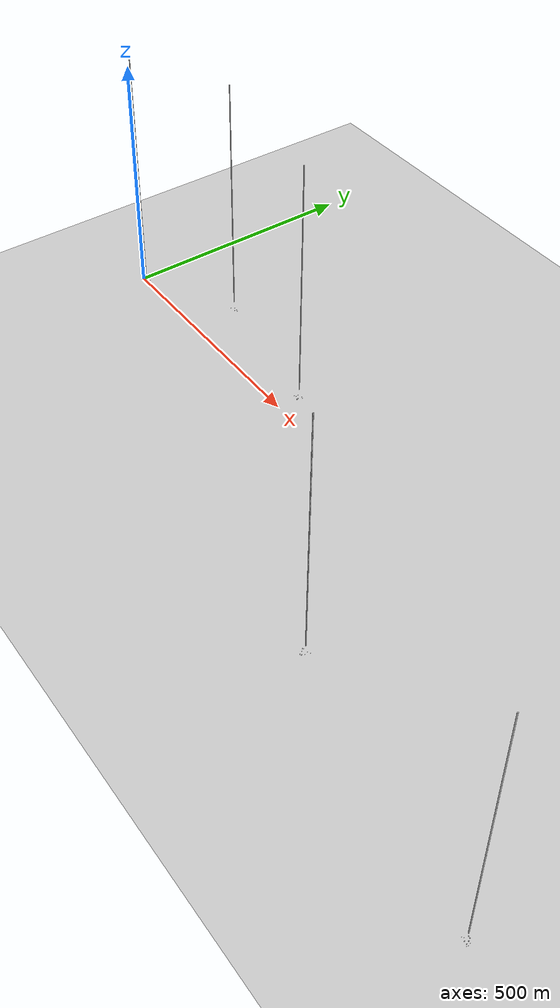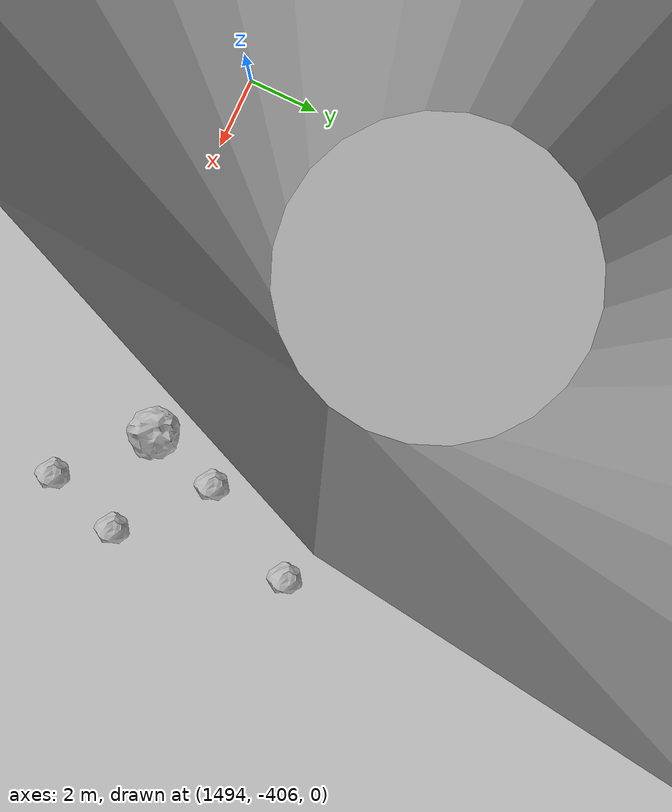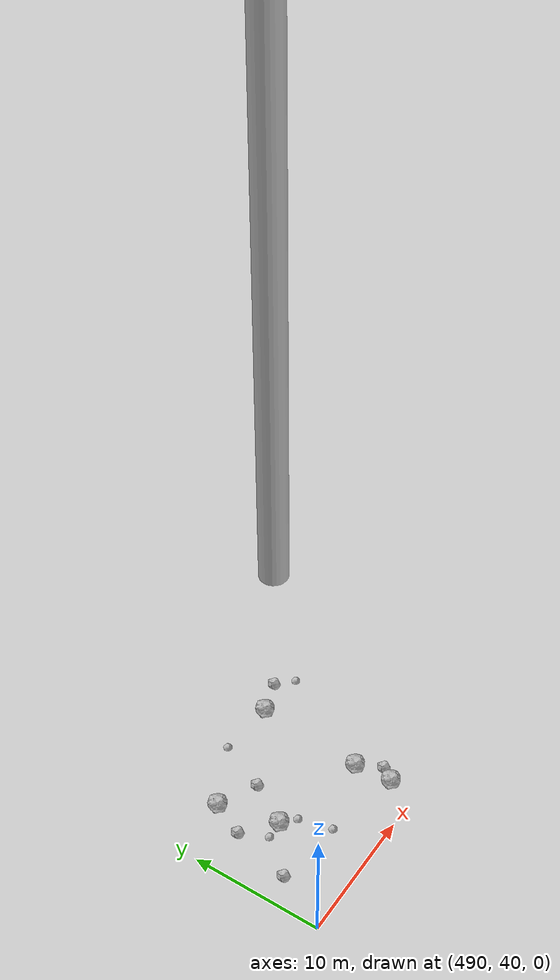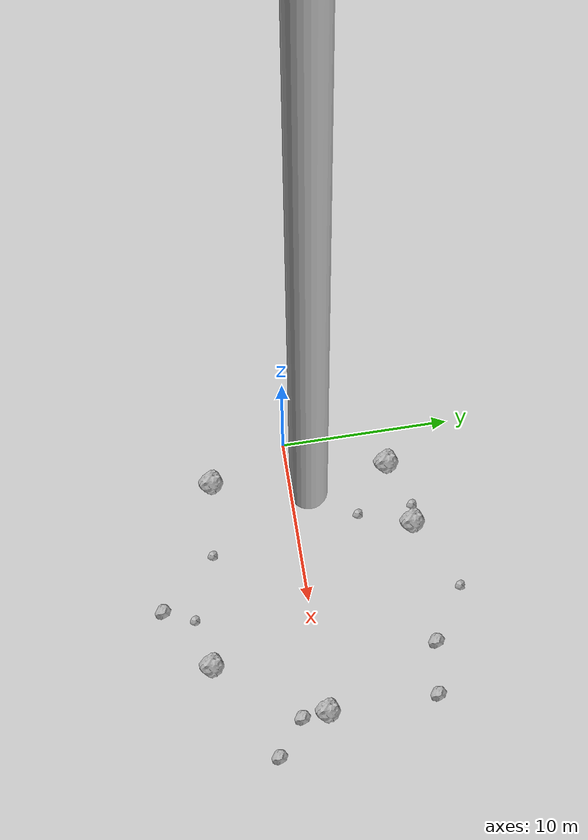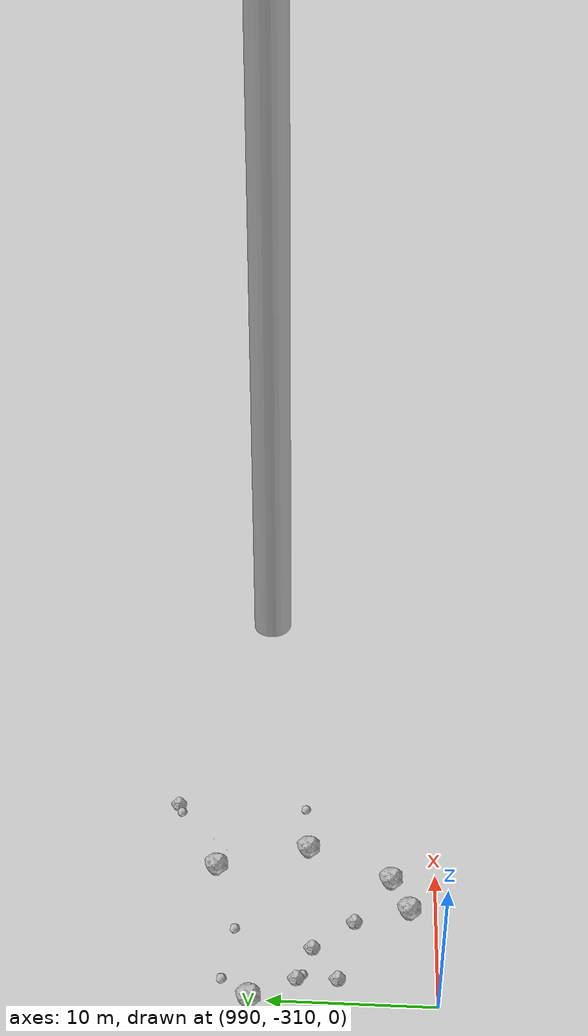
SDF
<?xml version="1.0" ?>
<sdf version="1.6">
  <world name="default">

    <include>
      <uri>model://custom_ground</uri>
    </include>

    <include>
      <uri>model://sun</uri>
    </include>

    <spherical_coordinates>
      <surface_model>EARTH_WGS84</surface_model>
      <latitude_deg>38.161479</latitude_deg>
      <longitude_deg>-122.454630</longitude_deg>
      <elevation>488.0</elevation>
      <heading_deg>90</heading_deg>
    </spherical_coordinates>

    <model name="rock1_0_0">
      <include>
        <uri>model://rock1</uri>
        <pose>6.1824321757715435 6.888398201601802 0.5 0 0 0</pose>
      </include>
    </model>
    <model name="rock1_0_1">
      <include>
        <uri>model://rock1</uri>
        <pose>13.232699019479647 -6.296399004590341 0.5 0 0 0</pose>
      </include>
    </model>
    <model name="rock1_0_2">
      <include>
        <uri>model://rock1</uri>
        <pose>2.209179304546629 5.941344303936749 0.5 0 0 0</pose>
      </include>
    </model>
    <model name="rock1_0_3">
      <include>
        <uri>model://rock1</uri>
        <pose>17.00802507245848 0.051004042863322496 0.5 0 0 0</pose>
      </include>
    </model>
    <model name="rock1_0_4">
      <include>
        <uri>model://rock1</uri>
        <pose>1.9121423185794617 -4.714589942565461 0.5 0 0 0</pose>
      </include>
    </model>
    <model name="rock2_0_0">
      <include>
        <uri>model://rock2</uri>
        <pose>19.23663999640715 -3.1477356330472723 0.3 0 0 0</pose>
      </include>
    </model>
    <model name="rock2_0_1">
      <include>
        <uri>model://rock2</uri>
        <pose>9.408966148807407 -8.67067469249615 0.3 0 0 0</pose>
      </include>
    </model>
    <model name="rock2_0_2">
      <include>
        <uri>model://rock2</uri>
        <pose>13.68260434279771 7.089190408409085 0.3 0 0 0</pose>
      </include>
    </model>
    <model name="rock2_0_3">
      <include>
        <uri>model://rock2</uri>
        <pose>16.89307140179175 6.667191962954973 0.3 0 0 0</pose>
      </include>
    </model>
    <model name="rock2_0_4">
      <include>
        <uri>model://rock2</uri>
        <pose>17.098887576201925 -1.469563478201156 0.3 0 0 0</pose>
      </include>
    </model>
    <model name="rock3_0_0">
      <include>
        <uri>model://rock3</uri>
        <pose>10.212415187337108 -6.883486304628512 0.2 0 0 0</pose>
      </include>
    </model>
    <model name="rock3_0_1">
      <include>
        <uri>model://rock3</uri>
        <pose>6.362223009131034 -5.261863627740551 0.2 0 0 0</pose>
      </include>
    </model>
    <model name="rock3_0_2">
      <include>
        <uri>model://rock3</uri>
        <pose>4.976266327527201 7.042895151003464 0.2 0 0 0</pose>
      </include>
    </model>
    <model name="rock3_0_3">
      <include>
        <uri>model://rock3</uri>
        <pose>10.459747045499055 9.05318262239578 0.2 0 0 0</pose>
      </include>
    </model>
    <model name="rock3_0_4">
      <include>
        <uri>model://rock3</uri>
        <pose>5.0933209572403415 3.7415994457849386 0.2 0 0 0</pose>
      </include>
    </model>
    <model name="rock1_1_0">
      <include>
        <uri>model://rock1</uri>
        <pose>204.1110656782881 103.00419307163591 0.5 0 0 0</pose>
      </include>
    </model>
    <model name="rock1_1_1">
      <include>
        <uri>model://rock1</uri>
        <pose>197.48901009179494 90.70064119404076 0.5 0 0 0</pose>
      </include>
    </model>
    <model name="rock1_1_2">
      <include>
        <uri>model://rock1</uri>
        <pose>197.86329263503157 102.70473404224788 0.5 0 0 0</pose>
      </include>
    </model>
    <model name="rock1_1_3">
      <include>
        <uri>model://rock1</uri>
        <pose>203.81690691152488 98.75804081378415 0.5 0 0 0</pose>
      </include>
    </model>
    <model name="rock1_1_4">
      <include>
        <uri>model://rock1</uri>
        <pose>193.39588840115482 96.0553405232492 0.5 0 0 0</pose>
      </include>
    </model>
    <model name="rock2_1_0">
      <include>
        <uri>model://rock2</uri>
        <pose>195.31570452483385 101.6967337388109 0.3 0 0 0</pose>
      </include>
    </model>
    <model name="rock2_1_1">
      <include>
        <uri>model://rock2</uri>
        <pose>208.96661791304803 101.83729545590293 0.3 0 0 0</pose>
      </include>
    </model>
    <model name="rock2_1_2">
      <include>
        <uri>model://rock2</uri>
        <pose>192.37273562263553 106.04085156116537 0.3 0 0 0</pose>
      </include>
    </model>
    <model name="rock2_1_3">
      <include>
        <uri>model://rock2</uri>
        <pose>201.72578648976867 98.9847596940556 0.3 0 0 0</pose>
      </include>
    </model>
    <model name="rock2_1_4">
      <include>
        <uri>model://rock2</uri>
        <pose>207.46768779673704 105.35173951962142 0.3 0 0 0</pose>
      </include>
    </model>
    <model name="rock3_1_0">
      <include>
        <uri>model://rock3</uri>
        <pose>203.10366964461244 99.06798704986325 0.2 0 0 0</pose>
      </include>
    </model>
    <model name="rock3_1_1">
      <include>
        <uri>model://rock3</uri>
        <pose>190.5504608962276 97.2891000090758 0.2 0 0 0</pose>
      </include>
    </model>
    <model name="rock3_1_2">
      <include>
        <uri>model://rock3</uri>
        <pose>194.68988688865576 97.31903258327411 0.2 0 0 0</pose>
      </include>
    </model>
    <model name="rock3_1_3">
      <include>
        <uri>model://rock3</uri>
        <pose>205.19299935806617 98.24236779199153 0.2 0 0 0</pose>
      </include>
    </model>
    <model name="rock3_1_4">
      <include>
        <uri>model://rock3</uri>
        <pose>196.98417508024926 94.71924697910151 0.2 0 0 0</pose>
      </include>
    </model>
    <model name="rock1_2_0">
      <include>
        <uri>model://rock1</uri>
        <pose>503.4618123577617 53.30615975096244 0.5 0 0 0</pose>
      </include>
    </model>
    <model name="rock1_2_1">
      <include>
        <uri>model://rock1</uri>
        <pose>494.46011072529336 51.293183164505955 0.5 0 0 0</pose>
      </include>
    </model>
    <model name="rock1_2_2">
      <include>
        <uri>model://rock1</uri>
        <pose>502.8321830996398 44.9546316614734 0.5 0 0 0</pose>
      </include>
    </model>
    <model name="rock1_2_3">
      <include>
        <uri>model://rock1</uri>
        <pose>503.0488955821214 42.06553886934038 0.5 0 0 0</pose>
      </include>
    </model>
    <model name="rock1_2_4">
      <include>
        <uri>model://rock1</uri>
        <pose>495.574364854488 46.756773711947005 0.5 0 0 0</pose>
      </include>
    </model>
    <model name="rock2_2_0">
      <include>
        <uri>model://rock2</uri>
        <pose>503.7789180779218 43.140942941014295 0.3 0 0 0</pose>
      </include>
    </model>
    <model name="rock2_2_1">
      <include>
        <uri>model://rock2</uri>
        <pose>505.90857709323996 54.18623476933202 0.3 0 0 0</pose>
      </include>
    </model>
    <model name="rock2_2_2">
      <include>
        <uri>model://rock2</uri>
        <pose>492.07370520336144 44.10882337038332 0.3 0 0 0</pose>
      </include>
    </model>
    <model name="rock2_2_3">
      <include>
        <uri>model://rock2</uri>
        <pose>497.4145373126709 49.95338089556538 0.3 0 0 0</pose>
      </include>
    </model>
    <model name="rock2_2_4">
      <include>
        <uri>model://rock2</uri>
        <pose>493.2635322312541 48.786687775130986 0.3 0 0 0</pose>
      </include>
    </model>
    <model name="rock3_2_0">
      <include>
        <uri>model://rock3</uri>
        <pose>507.1009809385055 52.97387278642605 0.2 0 0 0</pose>
      </include>
    </model>
    <model name="rock3_2_1">
      <include>
        <uri>model://rock3</uri>
        <pose>496.5831660742791 45.871604815502224 0.2 0 0 0</pose>
      </include>
    </model>
    <model name="rock3_2_2">
      <include>
        <uri>model://rock3</uri>
        <pose>497.228308607697 43.324448286395494 0.2 0 0 0</pose>
      </include>
    </model>
    <model name="rock3_2_3">
      <include>
        <uri>model://rock3</uri>
        <pose>499.0574880836085 53.660875537557146 0.2 0 0 0</pose>
      </include>
    </model>
    <model name="rock3_2_4">
      <include>
        <uri>model://rock3</uri>
        <pose>494.222573635187 46.69658234393274 0.2 0 0 0</pose>
      </include>
    </model>
    <model name="rock1_3_0">
      <include>
        <uri>model://rock1</uri>
        <pose>999.3751860700022 -307.2320373695463 0.5 0 0 0</pose>
      </include>
    </model>
    <model name="rock1_3_1">
      <include>
        <uri>model://rock1</uri>
        <pose>1001.7790429992007 -301.99389781203814 0.5 0 0 0</pose>
      </include>
    </model>
    <model name="rock1_3_2">
      <include>
        <uri>model://rock1</uri>
        <pose>1000.0632559009084 -296.2588196791542 0.5 0 0 0</pose>
      </include>
    </model>
    <model name="rock1_3_3">
      <include>
        <uri>model://rock1</uri>
        <pose>990.0714485905694 -298.9555666257897 0.5 0 0 0</pose>
      </include>
    </model>
    <model name="rock1_3_4">
      <include>
        <uri>model://rock1</uri>
        <pose>997.0001327897195 -308.3465983321034 0.5 0 0 0</pose>
      </include>
    </model>
    <model name="rock2_3_0">
      <include>
        <uri>model://rock2</uri>
        <pose>991.4952308434056 -301.6550802525943 0.3 0 0 0</pose>
      </include>
    </model>
    <model name="rock2_3_1">
      <include>
        <uri>model://rock2</uri>
        <pose>995.8641388274027 -305.00499941756874 0.3 0 0 0</pose>
      </include>
    </model>
    <model name="rock2_3_2">
      <include>
        <uri>model://rock2</uri>
        <pose>991.551395220895 -304.0990444520434 0.3 0 0 0</pose>
      </include>
    </model>
    <model name="rock2_3_3">
      <include>
        <uri>model://rock2</uri>
        <pose>993.7822702667204 -302.51744528874417 0.3 0 0 0</pose>
      </include>
    </model>
    <model name="rock2_3_4">
      <include>
        <uri>model://rock2</uri>
        <pose>1005.2230392762765 -293.36285987322174 0.3 0 0 0</pose>
      </include>
    </model>
    <model name="rock3_3_0">
      <include>
        <uri>model://rock3</uri>
        <pose>991.3529894352428 -297.2901322718663 0.2 0 0 0</pose>
      </include>
    </model>
    <model name="rock3_3_1">
      <include>
        <uri>model://rock3</uri>
        <pose>1004.6139080238936 -293.65051997817966 0.2 0 0 0</pose>
      </include>
    </model>
    <model name="rock3_3_2">
      <include>
        <uri>model://rock3</uri>
        <pose>995.1090372807354 -297.7966317600782 0.2 0 0 0</pose>
      </include>
    </model>
    <model name="rock3_3_3">
      <include>
        <uri>model://rock3</uri>
        <pose>1005.1822958966424 -301.71708475062246 0.2 0 0 0</pose>
      </include>
    </model>
    <model name="rock3_3_4">
      <include>
        <uri>model://rock3</uri>
        <pose>991.8161114986668 -302.0466322450305 0.2 0 0 0</pose>
      </include>
    </model>
    <model name="rock1_4_0">
      <include>
        <uri>model://rock1</uri>
        <pose>1504.0036994091736 -404.13554274870876 0.5 0 0 0</pose>
      </include>
    </model>
    <model name="rock1_4_1">
      <include>
        <uri>model://rock1</uri>
        <pose>1497.5028677687192 -394.9268895848145 0.5 0 0 0</pose>
      </include>
    </model>
    <model name="rock1_4_2">
      <include>
        <uri>model://rock1</uri>
        <pose>1502.3884511008757 -399.28821970287265 0.5 0 0 0</pose>
      </include>
    </model>
    <model name="rock1_4_3">
      <include>
        <uri>model://rock1</uri>
        <pose>1500.439883348666 -395.5225231338655 0.5 0 0 0</pose>
      </include>
    </model>
    <model name="rock1_4_4">
      <include>
        <uri>model://rock1</uri>
        <pose>1499.544110721923 -404.015789320065 0.5 0 0 0</pose>
      </include>
    </model>
    <model name="rock2_4_0">
      <include>
        <uri>model://rock2</uri>
        <pose>1506.2240511253724 -406.1998954585353 0.3 0 0 0</pose>
      </include>
    </model>
    <model name="rock2_4_1">
      <include>
        <uri>model://rock2</uri>
        <pose>1506.8887017831314 -404.069213906306 0.3 0 0 0</pose>
      </include>
    </model>
    <model name="rock2_4_2">
      <include>
        <uri>model://rock2</uri>
        <pose>1492.6368649668514 -403.1763748792054 0.3 0 0 0</pose>
      </include>
    </model>
    <model name="rock2_4_3">
      <include>
        <uri>model://rock2</uri>
        <pose>1506.0913220137318 -399.181649197625 0.3 0 0 0</pose>
      </include>
    </model>
    <model name="rock2_4_4">
      <include>
        <uri>model://rock2</uri>
        <pose>1504.6319159980708 -402.0984467062696 0.3 0 0 0</pose>
      </include>
    </model>
    <model name="rock3_4_0">
      <include>
        <uri>model://rock3</uri>
        <pose>1495.2062350374852 -400.9605501173064 0.2 0 0 0</pose>
      </include>
    </model>
    <model name="rock3_4_1">
      <include>
        <uri>model://rock3</uri>
        <pose>1495.227288302497 -393.98039043958426 0.2 0 0 0</pose>
      </include>
    </model>
    <model name="rock3_4_2">
      <include>
        <uri>model://rock3</uri>
        <pose>1500.4577944398843 -404.6624369685881 0.2 0 0 0</pose>
      </include>
    </model>
    <model name="rock3_4_3">
      <include>
        <uri>model://rock3</uri>
        <pose>1494.8955173052161 -400.73324156955135 0.2 0 0 0</pose>
      </include>
    </model>
    <model name="rock3_4_4">
      <include>
        <uri>model://rock3</uri>
        <pose>1495.539658108799 -392.0436542724957 0.2 0 0 0</pose>
      </include>
    </model>

    <model name="cylinder_1">
      <static>true</static>
      <link name="link">
        <visual name="visual">
          <geometry>
            <cylinder>
              <radius>1</radius>
              <length>500</length>
            </cylinder>
          </geometry>
        </visual>
      </link>
      <pose>10 0 270 0 0 0</pose>
    </model>

    <model name="cylinder_2">
      <static>true</static>
      <link name="link">
        <visual name="visual">
          <geometry>
            <cylinder>
              <radius>1</radius>
              <length>500</length>
            </cylinder>
          </geometry>
        </visual>
      </link>
      <pose>200 100 270 0 0 0</pose>
    </model>

    <model name="cylinder_3">
      <static>true</static>
      <link name="link">
        <visual name="visual">
          <geometry>
            <cylinder>
              <radius>1</radius>
              <length>500</length>
            </cylinder>
          </geometry>
        </visual>
      </link>
      <pose>500 50 270 0 0 0</pose>
    </model>

    <model name="cylinder_4">
      <static>true</static>
      <link name="link">
        <visual name="visual">
          <geometry>
            <cylinder>
              <radius>1</radius>
              <length>500</length>
            </cylinder>
          </geometry>
        </visual>
      </link>
      <pose>1000 -300 270 0 0 0</pose>
    </model>

    <model name="cylinder_5">
      <static>true</static>
      <link name="link">
        <visual name="visual">
          <geometry>
            <cylinder>
              <radius>1</radius>
              <length>500</length>
            </cylinder>
          </geometry>
        </visual>
      </link>
      <pose>1500 -400 270 0 0 0</pose>
    </model>

  </world>
</sdf>

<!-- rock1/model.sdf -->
<sdf version="1.6">
  <model name="rock1">
    <static>true</static> <!-- Set to true if the model should not move -->
    <pose>0 0 0 0 0 0</pose>

    <!--z offset is 0.5 for full scale-->

    <link name="link">
      <collision name="rock1_collision">
        <geometry>
          <mesh>
            <uri>model://meshes/rock1.dae</uri>
          </mesh>
        </geometry>
      </collision>
      <visual name="rock1_visual">
        <geometry>
          <mesh>
            <uri>model://meshes/rock1.dae</uri>
          </mesh>
        </geometry>
        <material>
          <script>
            <uri>model://materials/scripts/sand_pebbles.material</uri>
            <name>custom_ground/Image</name>
          </script>
        </material>
      </visual>
    </link>
  </model>
</sdf>

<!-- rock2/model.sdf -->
<sdf version="1.6">
  <model name="rock2">
    <static>true</static> <!-- Set to true if the model should not move -->
    <pose>0 0 0 0 0 0</pose>

    <!--z offset is 0.3 for full scale-->

    <link name="link">
      <collision name="rock2_collision">
        <geometry>
          <mesh>
            <uri>model://meshes/rock2.dae</uri>
          </mesh>
        </geometry>
      </collision>
      <visual name="rock2_visual">
        <geometry>
          <mesh>
            <uri>model://meshes/rock2.dae</uri>
          </mesh>
        </geometry>
        <material>
          <script>
            <uri>model://materials/scripts/sand_pebbles.material</uri>
            <name>custom_ground/Image</name>
          </script>
        </material>
      </visual>
    </link>
  </model>
</sdf>

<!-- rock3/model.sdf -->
<sdf version="1.6">
  <model name="rock3">
    <static>true</static> <!-- Set to true if the model should not move -->
    <pose>0 0 0 0 0 0</pose>

    <!--z offset is 0.2 for full scale-->

    <link name="link">
      <collision name="rock3_collision">
        <geometry>
          <mesh>
            <uri>model://meshes/rock3.dae</uri>
          </mesh>
        </geometry>
      </collision>
      <visual name="rock3_visual">
        <geometry>
          <mesh>
            <uri>model://meshes/rock3.dae</uri>
          </mesh>
        </geometry>
        <material>
          <script>
            <uri>model://materials/scripts/sand_pebbles.material</uri>
            <name>custom_ground/Image</name>
          </script>
        </material>
      </visual>
    </link>
  </model>
</sdf>

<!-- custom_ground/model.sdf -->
<sdf version="1.6">
  <model name="custom_ground">
    <static>true</static> <!-- Ground is static and immovable -->
    <link name="ground_link">
      <pose>240 0 0 0 0 0</pose> <!-- Position and orientation relative to the world -->
      <!-- Visual Representation -->
      <visual name="ground_visual">
        <geometry>
          <plane>
            <normal>0 0 1</normal> <!-- Upward facing plane -->
            <size>500 500</size> <!-- Size of the plane -->
          </plane>
        </geometry>
        <material>
          <script>
            <uri>model://materials/scripts/sand_pebbles.material</uri>
            <name>custom_ground/Image</name>
          </script>
        </material>
      </visual>

      <!-- Collision Representation -->
      <collision name="ground_collision">
        <geometry>
          <plane>
            <normal>0 0 1</normal>
            <size>100 100</size>
          </plane>
        </geometry>
      </collision>

    </link>
  </model>
</sdf>
